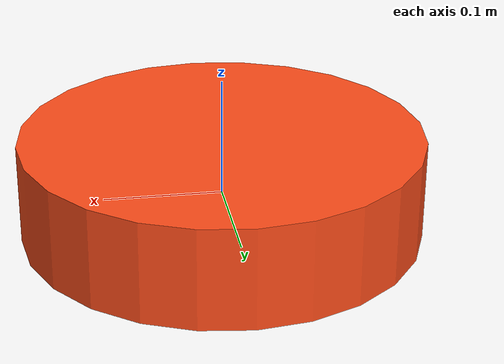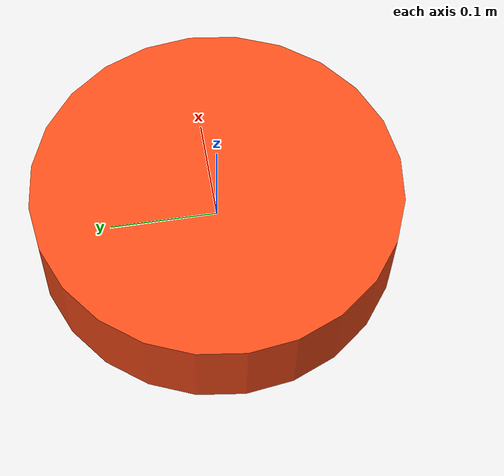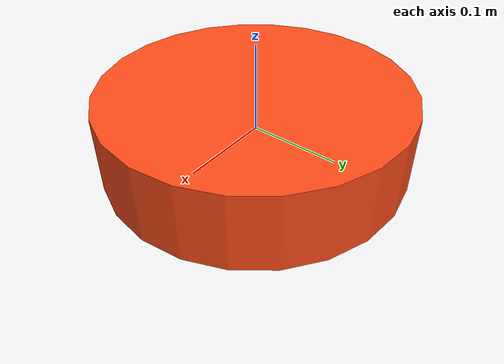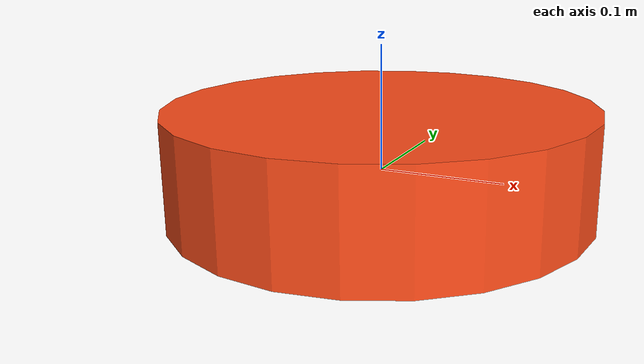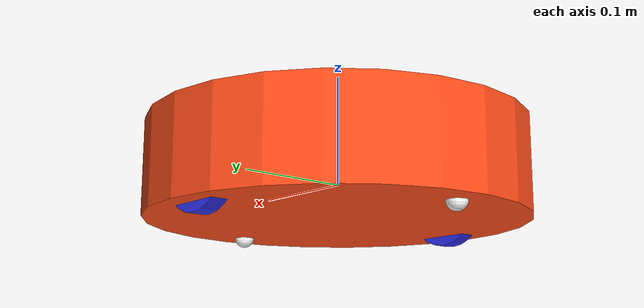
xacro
<?xml version="1.0"?>
<robot xmlns:xacro="http://www.ros.org/wiki/xacro" >

    <xacro:include filename="inertial_macros.xacro"/>

    <xacro:property name="chassis_radius" value="0.17"/>
    <xacro:property name="chassis_height" value="0.08535"/>
    <xacro:property name="chassis_mass" value="1.0"/>
    <xacro:property name="wheel_radius" value="0.0415"/>
    <xacro:property name="wheel_thickness" value="0.015"/>
    <xacro:property name="wheel_mass" value="0.08"/>
    <xacro:property name="wheel_offset_x" value="0.0"/>
    <xacro:property name="wheel_offset_y" value="0.14265"/>
    <xacro:property name="wheel_offset_z" value="-0.01"/>
    <xacro:property name="caster_wheel_radius" value="0.00925"/>
    <xacro:property name="caster_wheel_mass" value="0.01"/>
    <xacro:property name="caster_wheel_offset_x" value="0.139"/>
    <xacro:property name="caster_wheel_offset_z" value="${wheel_offset_z - wheel_radius + caster_wheel_radius}"/>

    <material name="white">
        <color rgba="1 1 1 1" />
    </material>

    <material name="orange">
        <color rgba="1 0.3 0.1 1"/>
    </material>

    <material name="blue">
        <color rgba="0.2 0.2 1 1"/>
    </material>

    <material name="black">
        <color rgba="0 0 0 1"/>
    </material>

    <material name="red">
        <color rgba="1 0 0 1"/>
    </material>

    <!-- BASE LINK -->

    <link name="base_link">

    </link>

    <!-- BASE_FOOTPRINT LINK -->

    <joint name="base_footprint_joint" type="fixed">
        <parent link="base_link"/>
        <child link="base_footprint"/>
        <origin xyz="0 0 0" rpy="0 0 0"/>
    </joint>

    <link name="base_footprint">
    </link>

    <!-- CHASSIS LINK -->

    <joint name="chassis_joint" type="fixed">
        <parent link="base_link"/>
        <child link="chassis"/>
        <origin xyz="${-wheel_offset_x} 0 ${-wheel_offset_z}"/>
    </joint>

    <link name="chassis">
        <visual>
            <origin xyz="0 0 0"/>
            <geometry>
                <cylinder radius="${chassis_radius}" length="${chassis_height}"/>
            </geometry>
            <material name="orange"/>
        </visual>
        <collision>
            <origin xyz="${chassis_radius} 0 ${chassis_height/2}"/>
            <geometry>
                <cylinder radius="${chassis_radius}" length="${chassis_height}"/>
            </geometry>
        </collision>
        <xacro:inertial_cylinder mass="0.5" length="${chassis_height}" radius="${chassis_radius}">
            <origin xyz="${chassis_radius} 0 ${chassis_height/2}" rpy="0 0 0"/>
        </xacro:inertial_cylinder>
    </link>

    <gazebo reference="chassis">
        <material>Gazebo/Orange</material>
    </gazebo>

    <!-- LEFT WHEEL LINK -->

    <joint name="left_wheel_joint" type="continuous">
        <parent link="base_link"/>
        <child link="left_wheel"/>
        <origin xyz="0 ${wheel_offset_y} 0" rpy="-${pi/2} 0 0" />
        <axis xyz="0 0 1"/>
    </joint>

    <link name="left_wheel">
        <visual>
            <geometry>
                <cylinder radius="${wheel_radius}" length="${wheel_thickness}"/>
            </geometry>
            <material name="blue"/>
        </visual>
        <collision>
            <geometry>
                <sphere radius="${wheel_radius}"/>
            </geometry>
        </collision>
        <xacro:inertial_cylinder mass="${wheel_mass}" length="${wheel_thickness}" radius="${wheel_radius}">
            <origin xyz="0 0 0" rpy="0 0 0"/>
        </xacro:inertial_cylinder>
    </link>

    <gazebo reference="left_wheel">
        <material>Gazebo/Blue</material>
    </gazebo>

    <!-- RIGHT WHEEL LINK -->

    <joint name="right_wheel_joint" type="continuous">
        <parent link="base_link"/>
        <child link="right_wheel"/>
        <origin xyz="0 ${-wheel_offset_y} 0" rpy="${pi/2} 0 0" />
        <axis xyz="0 0 -1"/>
    </joint>

    <link name="right_wheel">
        <visual>
            <geometry>
                <cylinder radius="${wheel_radius}" length="${wheel_thickness}"/>
            </geometry>
            <material name="blue"/>
        </visual>
        <collision>
            <geometry>
                <sphere radius="${wheel_radius}"/>
            </geometry>
        </collision>
        <xacro:inertial_cylinder mass="${wheel_mass}" length="${wheel_thickness}" radius="${wheel_radius}">
            <origin xyz="0 0 0" rpy="0 0 0"/>
        </xacro:inertial_cylinder>
    </link>

    <gazebo reference="right_wheel">
        <material>Gazebo/Blue</material>
    </gazebo>

    <!-- CASTER WHEEL LINK -->

    <joint name="caster_wheel_joint" type="fixed">
        <parent link="chassis"/>
        <child link="caster_wheel"/>
        <origin xyz="${caster_wheel_offset_x} 0 ${caster_wheel_offset_z}"/>
    </joint>

    <link name="caster_wheel">
        <visual>
            <geometry>
                <sphere radius="${caster_wheel_radius}"/>
            </geometry>
            <material name="white"/>
        </visual>
        <collision>
            <geometry>
                <sphere radius="${caster_wheel_radius}"/>
            </geometry>
        </collision>
        <xacro:inertial_sphere mass="${caster_wheel_mass}" radius="${caster_wheel_radius}">
            <origin xyz="0 0 0" rpy="0 0 0"/>
        </xacro:inertial_sphere>
    </link>

    <gazebo reference="caster_wheel">
        <material>Gazebo/White</material>
        <mu1 value="0.001"/>
        <mu2 value="0.001"/>
    </gazebo>

    <!-- CASTER WHEEL LINK -->

    <joint name="caster_wheel_joint_2" type="fixed">
        <parent link="chassis"/>
        <child link="caster_wheel_2"/>
        <origin xyz="${-caster_wheel_offset_x} 0 ${caster_wheel_offset_z}"/>
    </joint>

    <link name="caster_wheel_2">
        <visual>
            <geometry>
                <sphere radius="${caster_wheel_radius}"/>
            </geometry>
            <material name="white"/>
        </visual>
        <collision>
            <geometry>
                <sphere radius="${caster_wheel_radius}"/>
            </geometry>
        </collision>
        <xacro:inertial_sphere mass="${caster_wheel_mass}" radius="${caster_wheel_radius}">
            <origin xyz="0 0 0" rpy="0 0 0"/>
        </xacro:inertial_sphere>
    </link>

    <gazebo reference="caster_wheel_2">
        <material>Gazebo/White</material>
        <mu1 value="0.001"/>
        <mu2 value="0.001"/>
    </gazebo>

</robot>
